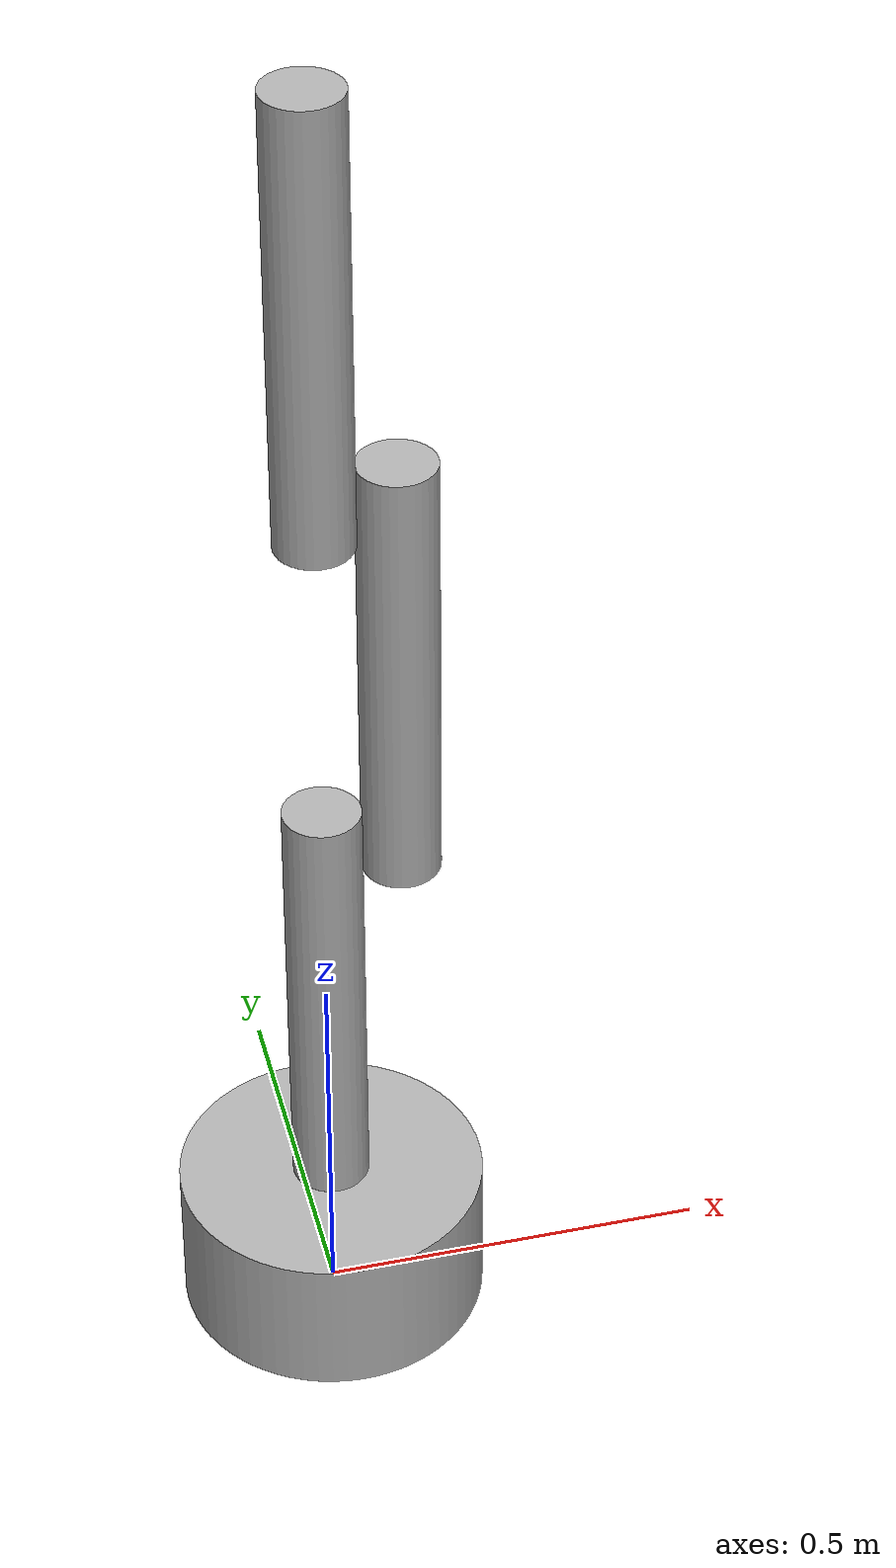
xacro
<?xml version="1.0"?>
<robot xmlns:xacro="http://www.ros.org/wiki/xacro" name="franka_emika">
    <xacro:arg name="initial_positions_file" default="initial_positions.yaml" />

    <!-- Import franka_emika urdf file -->
    <xacro:include filename="$(find franka_emika_description)/urdf/franka_emika.xacro" />

    <!-- Import control_xacro -->
    <xacro:include filename="franka_emika.ros2_control.xacro" />

    <xacro:franka_emika_ros2_control name="FakeSystem" initial_positions_file="$(arg initial_positions_file)"/>

</robot>

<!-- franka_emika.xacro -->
<robot name="franka_emika" xmlns:xacro="http://www.ros.org/wiki/xacro">

<xacro:include filename="$(find franka_emika_description)/urdf/materials.xacro" />
<xacro:include filename="$(find franka_emika_description)/urdf/franka_emika.trans" />
<xacro:include filename="$(find franka_emika_description)/urdf/franka_emika.gazebo" />
<link name="base_link">
  <inertial>
    <origin xyz="-4.6320184800976234e-17 2.3160092400488117e-17 0.09999999999999998" rpy="0 0 0"/>
    <mass value="197.292018645439"/>
    <inertia ixx="2.63056" iyy="2.63056" izz="3.94584" ixy="-0.0" iyz="-0.0" ixz="-0.0"/>
  </inertial>
  <visual>
    <origin xyz="0 0 0" rpy="0 0 0"/>
    <geometry>
      <mesh filename="file://$(find franka_emika_description)/meshes/base_link.stl" scale="0.001 0.001 0.001"/>
    </geometry>
    <material name="silver"/>
  </visual>
  <collision>
    <origin xyz="0 0 0" rpy="0 0 0"/>
    <geometry>
      <mesh filename="file://$(find franka_emika_description)/meshes/base_link.stl" scale="0.001 0.001 0.001"/>
    </geometry>
  </collision>
</link>

<link name="Component1_1">
  <inertial>
    <origin xyz="0.0 0.0 0.3000000000000001" rpy="0 0 0"/>
    <mass value="36.99225349601982"/>
    <inertia ixx="1.132888" iyy="1.132888" izz="0.04624" ixy="0.0" iyz="-0.0" ixz="-0.0"/>
  </inertial>
  <visual>
    <origin xyz="-0.0 -0.0 -0.2" rpy="0 0 0"/>
    <geometry>
      <mesh filename="file://$(find franka_emika_description)/meshes/Component1_1.stl" scale="0.001 0.001 0.001"/>
    </geometry>
    <material name="silver"/>
  </visual>
  <collision>
    <origin xyz="-0.0 -0.0 -0.2" rpy="0 0 0"/>
    <geometry>
      <mesh filename="file://$(find franka_emika_description)/meshes/Component1_1.stl" scale="0.001 0.001 0.001"/>
    </geometry>
  </collision>
</link>

<link name="Component2_1">
  <inertial>
    <origin xyz="0.09999999999999996 0.0 0.19999999999999984" rpy="0 0 0"/>
    <mass value="36.99225349601982"/>
    <inertia ixx="1.132888" iyy="1.132888" izz="0.04624" ixy="0.0" iyz="-0.0" ixz="-0.0"/>
  </inertial>
  <visual>
    <origin xyz="-0.0 -0.0 -0.8" rpy="0 0 0"/>
    <geometry>
      <mesh filename="file://$(find franka_emika_description)/meshes/Component2_1.stl" scale="0.001 0.001 0.001"/>
    </geometry>
    <material name="silver"/>
  </visual>
  <collision>
    <origin xyz="-0.0 -0.0 -0.8" rpy="0 0 0"/>
    <geometry>
      <mesh filename="file://$(find franka_emika_description)/meshes/Component2_1.stl" scale="0.001 0.001 0.001"/>
    </geometry>
  </collision>
</link>

<link name="Component3_1">
  <inertial>
    <origin xyz="-0.1 0.0 0.20000000000000018" rpy="0 0 0"/>
    <mass value="36.99225349601982"/>
    <inertia ixx="1.132888" iyy="1.132888" izz="0.04624" ixy="0.0" iyz="-0.0" ixz="-0.0"/>
  </inertial>
  <visual>
    <origin xyz="-0.1 -0.0 -1.3" rpy="0 0 0"/>
    <geometry>
      <mesh filename="file://$(find franka_emika_description)/meshes/Component3_1.stl" scale="0.001 0.001 0.001"/>
    </geometry>
    <material name="silver"/>
  </visual>
  <collision>
    <origin xyz="-0.1 -0.0 -1.3" rpy="0 0 0"/>
    <geometry>
      <mesh filename="file://$(find franka_emika_description)/meshes/Component3_1.stl" scale="0.001 0.001 0.001"/>
    </geometry>
  </collision>
</link>

<joint name="Revolute 1" type="continuous">
  <origin xyz="0.0 0.0 0.2" rpy="0 0 0"/>
  <parent link="base_link"/>
  <child link="Component1_1"/>
  <axis xyz="0.0 0.0 1.0"/>
</joint>

<joint name="Revolute 2" type="continuous">
  <origin xyz="0.0 0.0 0.6" rpy="0 0 0"/>
  <parent link="Component1_1"/>
  <child link="Component2_1"/>
  <axis xyz="1.0 0.0 0.0"/>
</joint>

<joint name="Revolute 3" type="continuous">
  <origin xyz="0.1 0.0 0.5" rpy="0 0 0"/>
  <parent link="Component2_1"/>
  <child link="Component3_1"/>
  <axis xyz="1.0 0.0 0.0"/>
</joint>

</robot>

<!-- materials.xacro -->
<robot name="franka_emika" xmlns:xacro="http://www.ros.org/wiki/xacro" >

<material name="silver">
  <color rgba="0.700 0.700 0.700 1.000"/>
</material>

</robot>

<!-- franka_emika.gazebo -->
<robot name="franka_emika" xmlns:xacro="http://www.ros.org/wiki/xacro" >

<xacro:property name="body_color" value="Gazebo/Silver" />

<gazebo>
  <plugin name="control" filename="libgazebo_ros_control.so"/>
</gazebo>
<gazebo reference="base_link">
  <material>${body_color}</material>
  <mu1>0.2</mu1>
  <mu2>0.2</mu2>
  <self_collide>true</self_collide>
  <gravity>true</gravity>
</gazebo>

<gazebo reference="Component1_1">
  <material>${body_color}</material>
  <mu1>0.2</mu1>
  <mu2>0.2</mu2>
  <self_collide>true</self_collide>
</gazebo>

<gazebo reference="Component2_1">
  <material>${body_color}</material>
  <mu1>0.2</mu1>
  <mu2>0.2</mu2>
  <self_collide>true</self_collide>
</gazebo>

<gazebo reference="Component3_1">
  <material>${body_color}</material>
  <mu1>0.2</mu1>
  <mu2>0.2</mu2>
  <self_collide>true</self_collide>
</gazebo>

</robot>
